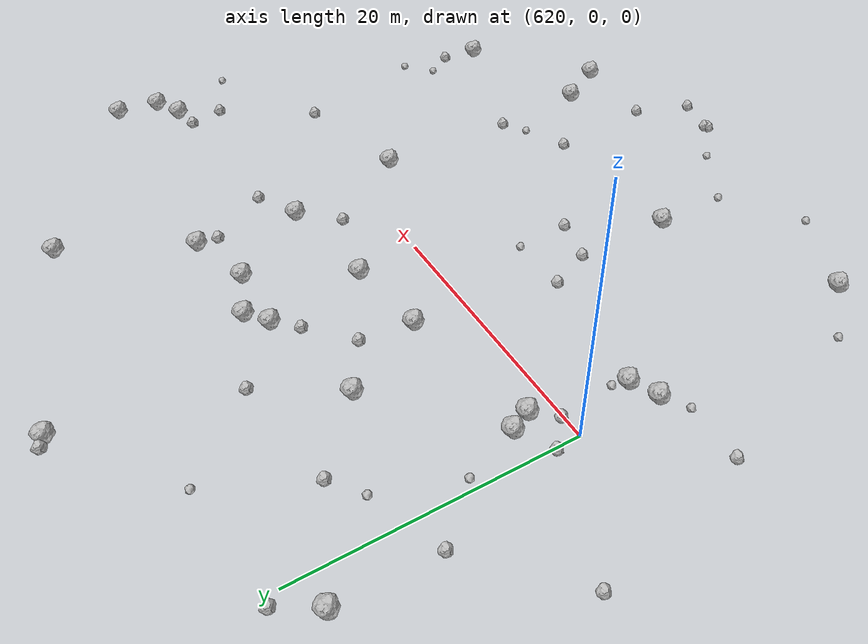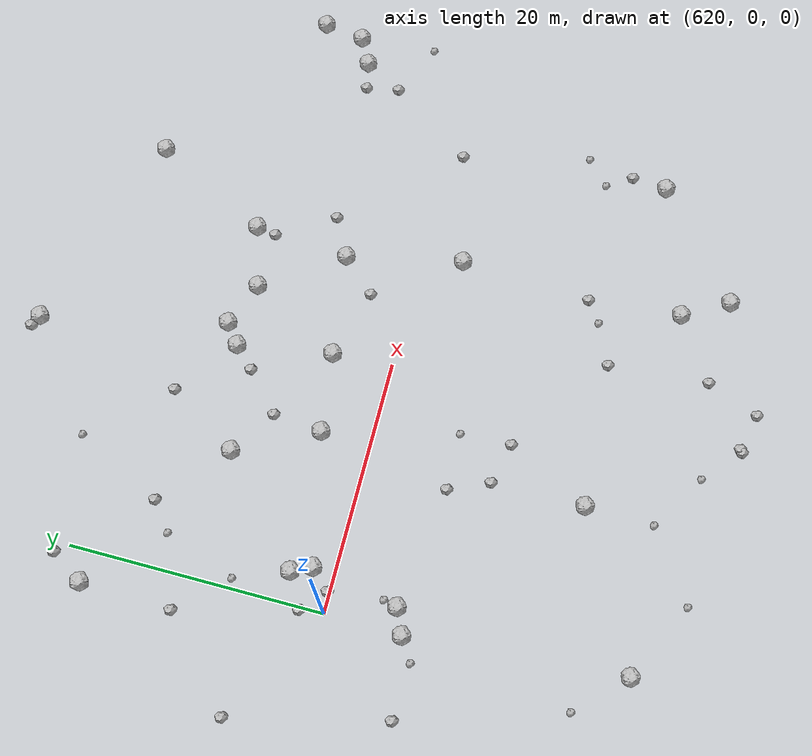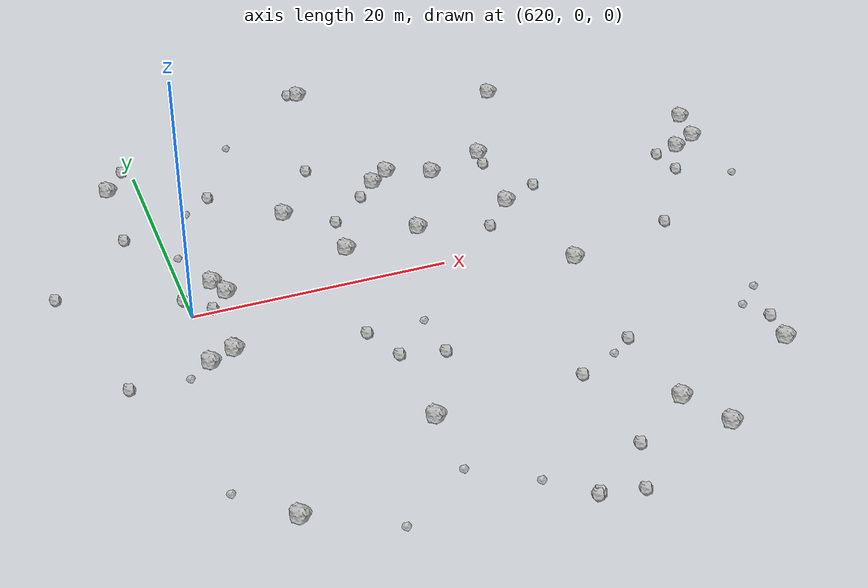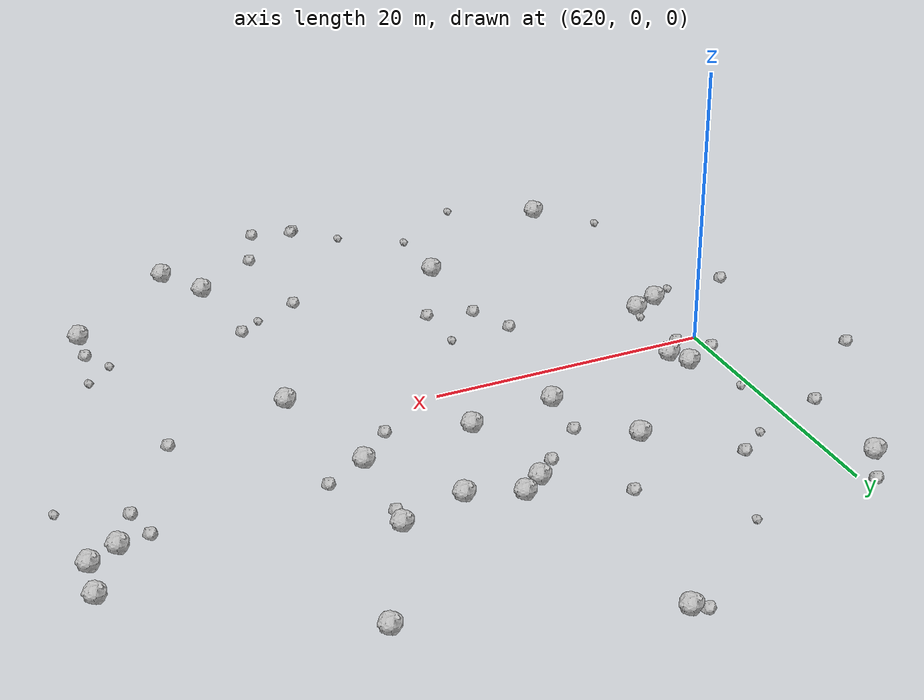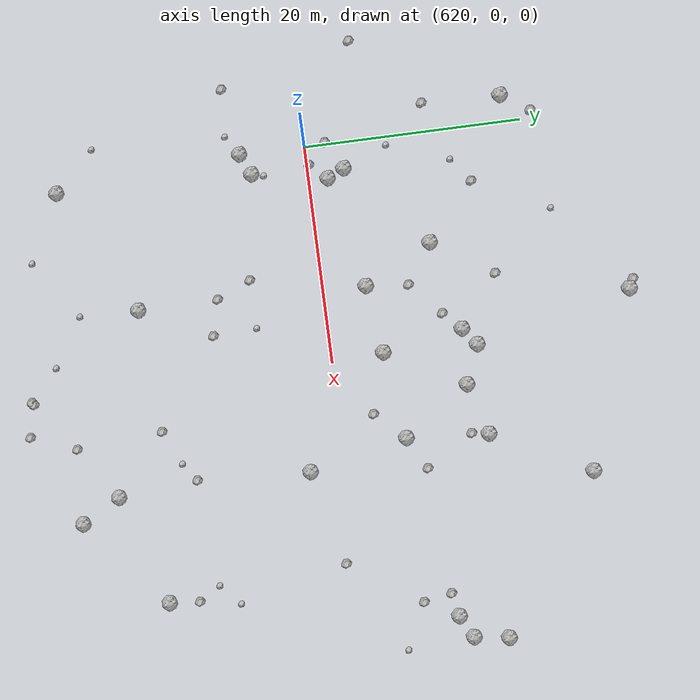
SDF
<sdf version="1.6">
 <world name="default">
  <include><uri>model://sun</uri></include>
  <model name="rock1_16_3">
   <include><uri>model://rock1</uri><pose>664.5213339260306 8.611868708997434 0.5 0 0 0</pose></include>
  </model>
  <model name="rock1_16_4">
   <include><uri>model://rock1</uri><pose>636.7084998193541 27.904199352440216 0.5 0 0 0</pose></include>
  </model>
  <model name="rock1_16_5">
   <include><uri>model://rock1</uri><pose>621.3599411969509 -23.10378935156132 0.5 0 0 0</pose></include>
  </model>
  <model name="rock1_16_6">
   <include><uri>model://rock1</uri><pose>649.7533401186431 -20.954486378267692 0.5 0 0 0</pose></include>
  </model>
  <model name="rock1_16_7">
   <include><uri>model://rock1</uri><pose>630.1795828306736 10.269545464331955 0.5 0 0 0</pose></include>
  </model>
  <model name="rock1_16_8">
   <include><uri>model://rock1</uri><pose>666.6024142803765 9.703130316734914 0.5 0 0 0</pose></include>
  </model>
  <model name="rock1_16_9">
   <include><uri>model://rock1</uri><pose>623.1603135270244 1.7479197615143107 0.5 0 0 0</pose></include>
  </model>
  <model name="rock1_16_10">
   <include><uri>model://rock1</uri><pose>648.2811445230428 13.433081023752024 0.5 0 0 0</pose></include>
  </model>
  <model name="rock1_16_11">
   <include><uri>model://rock1</uri><pose>667.0793663252837 12.890600948298065 0.5 0 0 0</pose></include>
  </model>
  <model name="rock1_16_12">
   <include><uri>model://rock1</uri><pose>617.6047195041463 18.36437183792814 0.5 0 0 0</pose></include>
  </model>
  <model name="rock1_16_13">
   <include><uri>model://rock1</uri><pose>621.9100279973487 -5.148328637724088 0.5 0 0 0</pose></include>
  </model>
  <model name="rock1_16_14">
   <include><uri>model://rock1</uri><pose>651.7503010930413 -24.509480038166455 0.5 0 0 0</pose></include>
  </model>
  <model name="rock1_16_15">
   <include><uri>model://rock1</uri><pose>652.8789263672833 22.526618732569574 0.5 0 0 0</pose></include>
  </model>
  <model name="rock1_16_16">
   <include><uri>model://rock1</uri><pose>633.3978987652672 3.9560027156297366 0.5 0 0 0</pose></include>
  </model>
  <model name="rock1_16_17">
   <include><uri>model://rock1</uri><pose>640.0018949976388 13.407625313288968 0.5 0 0 0</pose></include>
  </model>
  <model name="rock1_16_18">
   <include><uri>model://rock1</uri><pose>643.5257741485406 12.00812698654849 0.5 0 0 0</pose></include>
  </model>
  <model name="rock1_16_19">
   <include><uri>model://rock1</uri><pose>649.6684159230083 -3.238418826240032 0.5 0 0 0</pose></include>
  </model>
  <model name="rock1_16_20">
   <include><uri>model://rock1</uri><pose>622.4410439445209 3.3077028769538046 0.5 0 0 0</pose></include>
  </model>
  <model name="rock1_16_21">
   <include><uri>model://rock1</uri><pose>638.4027351902055 12.201039579800216 0.5 0 0 0</pose></include>
  </model>
  <model name="rock1_16_22">
   <include><uri>model://rock1</uri><pose>659.9339114133555 -17.58533156257651 0.5 0 0 0</pose></include>
  </model>
  <model name="rock1_16_23">
   <include><uri>model://rock1</uri><pose>647.6995468916577 5.8697217619941355 0.5 0 0 0</pose></include>
  </model>
  <model name="rock1_16_24">
   <include><uri>model://rock1</uri><pose>639.6503654657274 4.765736055485746 0.5 0 0 0</pose></include>
  </model>
  <model name="rock1_16_25">
   <include><uri>model://rock1</uri><pose>632.952763533079 -17.022964542217238 0.5 0 0 0</pose></include>
  </model>
  <model name="rock1_16_26">
   <include><uri>model://rock1</uri><pose>619.953290691247 -6.023767759717597 0.5 0 0 0</pose></include>
  </model>
  <model name="rock2_16_0">
   <include><uri>model://rock2</uri><pose>660.1753874984006 -14.819973416121755 0.3 0 0 0</pose></include>
  </model>
  <model name="rock2_16_1">
   <include><uri>model://rock2</uri><pose>621.6714044393151 0.20062802477384167 0.3 0 0 0</pose></include>
  </model>
  <model name="rock2_16_2">
   <include><uri>model://rock2</uri><pose>632.8619508676252 -9.689122228383514 0.3 0 0 0</pose></include>
  </model>
  <model name="rock2_16_3">
   <include><uri>model://rock2</uri><pose>619.8013938249599 1.892365939889423 0.3 0 0 0</pose></include>
  </model>
  <model name="rock2_16_4">
   <include><uri>model://rock2</uri><pose>649.1009062766033 -13.644748206105753 0.3 0 0 0</pose></include>
  </model>
  <model name="rock2_16_5">
   <include><uri>model://rock2</uri><pose>619.2473985811349 20.98979052517199 0.3 0 0 0</pose></include>
  </model>
  <model name="rock2_16_6">
   <include><uri>model://rock2</uri><pose>610.8344390800913 5.247576686839416 0.3 0 0 0</pose></include>
  </model>
  <model name="rock2_16_7">
   <include><uri>model://rock2</uri><pose>636.7541210535674 10.61507766384728 0.3 0 0 0</pose></include>
  </model>
  <model name="rock2_16_8">
   <include><uri>model://rock2</uri><pose>658.4345694556704 -1.0540685500619311 0.3 0 0 0</pose></include>
  </model>
  <model name="rock2_16_9">
   <include><uri>model://rock2</uri><pose>633.7026464857394 15.90118064154818 0.3 0 0 0</pose></include>
  </model>
  <model name="rock2_16_10">
   <include><uri>model://rock2</uri><pose>617.3346229900383 11.163288494890793 0.3 0 0 0</pose></include>
  </model>
  <model name="rock2_16_11">
   <include><uri>model://rock2</uri><pose>644.8880986151922 -24.224407439700947 0.3 0 0 0</pose></include>
  </model>
  <model name="rock2_16_12">
   <include><uri>model://rock2</uri><pose>636.1421020333328 -10.496745214547921 0.3 0 0 0</pose></include>
  </model>
  <model name="rock2_16_13">
   <include><uri>model://rock2</uri><pose>613.7823033151427 -6.908193704361501 0.3 0 0 0</pose></include>
  </model>
  <model name="rock2_16_14">
   <include><uri>model://rock2</uri><pose>633.745842660284 7.880224162655352 0.3 0 0 0</pose></include>
  </model>
  <model name="rock2_16_15">
   <include><uri>model://rock2</uri><pose>640.3200647085112 -27.629913530186073 0.3 0 0 0</pose></include>
  </model>
  <model name="rock2_16_16">
   <include><uri>model://rock2</uri><pose>650.6989949370377 7.488603944382838 0.3 0 0 0</pose></include>
  </model>
  <model name="rock2_16_17">
   <include><uri>model://rock2</uri><pose>644.2581321669644 -16.30547546241263 0.3 0 0 0</pose></include>
  </model>
  <model name="rock2_16_18">
   <include><uri>model://rock2</uri><pose>640.088545619644 -27.806916625763712 0.3 0 0 0</pose></include>
  </model>
  <model name="rock2_16_19">
   <include><uri>model://rock2</uri><pose>643.2586278036174 -28.348486499366068 0.3 0 0 0</pose></include>
  </model>
  <model name="rock2_16_20">
   <include><uri>model://rock2</uri><pose>645.1311550452825 3.1744078731235064 0.3 0 0 0</pose></include>
  </model>
  <model name="rock2_16_21">
   <include><uri>model://rock2</uri><pose>662.8498773278037 5.586677461229463 0.3 0 0 0</pose></include>
  </model>
  <model name="rock2_16_22">
   <include><uri>model://rock2</uri><pose>662.3664193572606 8.173744199391095 0.3 0 0 0</pose></include>
  </model>
  <model name="rock2_16_23">
   <include><uri>model://rock2</uri><pose>648.0155882026094 11.88726871925207 0.3 0 0 0</pose></include>
  </model>
  <model name="rock2_16_24">
   <include><uri>model://rock2</uri><pose>635.8199471214256 28.37976735897977 0.3 0 0 0</pose></include>
  </model>
  <model name="rock2_16_25">
   <include><uri>model://rock2</uri><pose>631.4825777955887 -6.535473831118686 0.3 0 0 0</pose></include>
  </model>
  <model name="rock2_16_26">
   <include><uri>model://rock2</uri><pose>625.0065810852716 14.78711364433321 0.3 0 0 0</pose></include>
  </model>
  <model name="rock3_16_0">
   <include><uri>model://rock3</uri><pose>627.4295473048276 -26.228454226801496 0.2 0 0 0</pose></include>
  </model>
  <model name="rock3_16_1">
   <include><uri>model://rock3</uri><pose>635.944157185447 -6.506734176239274 0.2 0 0 0</pose></include>
  </model>
  <model name="rock3_16_2">
   <include><uri>model://rock3</uri><pose>618.120288943542 -7.186709244222747 0.2 0 0 0</pose></include>
  </model>
  <model name="rock3_16_3">
   <include><uri>model://rock3</uri><pose>637.2407291345353 -25.25281428406302 0.2 0 0 0</pose></include>
  </model>
  <model name="rock3_16_4">
   <include><uri>model://rock3</uri><pose>628.4143222268481 21.706216561765153 0.2 0 0 0</pose></include>
  </model>
  <model name="rock3_16_5">
   <include><uri>model://rock3</uri><pose>658.9700957269879 -12.89453497613026 0.2 0 0 0</pose></include>
  </model>
  <model name="rock3_16_6">
   <include><uri>model://rock3</uri><pose>622.1300108737377 -4.085239352953554 0.2 0 0 0</pose></include>
  </model>
  <model name="rock3_16_7">
   <include><uri>model://rock3</uri><pose>647.4356509037764 -14.870381958780026 0.2 0 0 0</pose></include>
  </model>
  <model name="rock3_16_8">
   <include><uri>model://rock3</uri><pose>632.8199058204668 -22.491621271904854 0.2 0 0 0</pose></include>
  </model>
  <model name="rock3_16_9">
   <include><uri>model://rock3</uri><pose>667.0640616085625 3.5834840038880245 0.2 0 0 0</pose></include>
  </model>
  <model name="rock3_16_10">
   <include><uri>model://rock3</uri><pose>622.7916470550603 13.089269986764684 0.2 0 0 0</pose></include>
  </model>
  <model name="rock3_16_11">
   <include><uri>model://rock3</uri><pose>617.7285373080633 -19.483516801517048 0.2 0 0 0</pose></include>
  </model>
  <model name="rock3_16_12">
   <include><uri>model://rock3</uri><pose>620.7500182448164 7.399483758241814 0.2 0 0 0</pose></include>
  </model>
  <model name="rock3_16_13">
   <include><uri>model://rock3</uri><pose>660.8832604596249 -11.124817071859919 0.2 0 0 0</pose></include>
  </model>
 </world>
</sdf>
